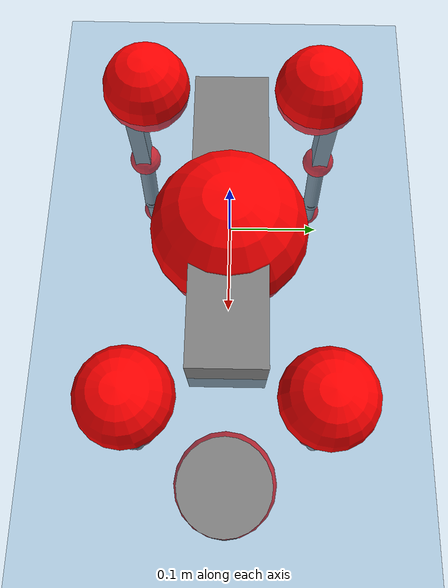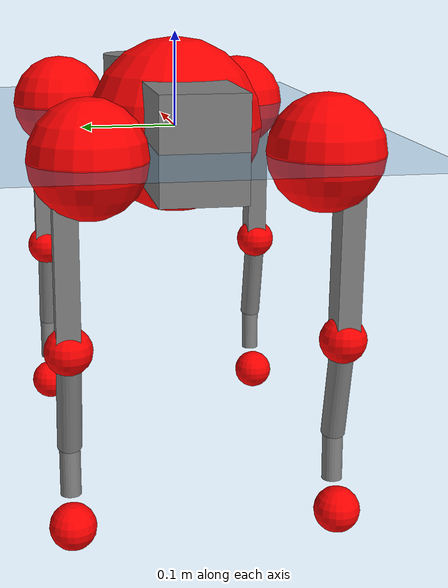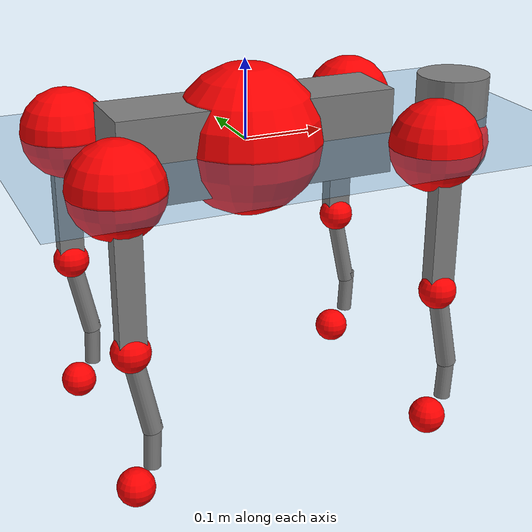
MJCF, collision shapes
<mujoco model="go2">
  <compiler angle="radian" assetdir="assets" balanceinertia="true" inertiafromgeom="false"/>

  <option timestep="0.005" density="1.2" viscosity="2e-05"/>

  <size nkey="1"/>

  <visual>
    <quality shadowsize="8192"/>
    <map shadowclip="0.5"/>
  </visual>

  <default>
    <default class="/">
      <geom contype="0" conaffinity="0" group="1" solref="-1000 -80"/>
      <site size="0.01 0.005 0.005" group="5"/>
      <general forcelimited="true" biastype="affine" gainprm="20" biasprm="0 -20 -0.5"/>
      <default class="go2">
        <joint armature="0.01" damping="0.01" frictionloss="0.2"/>
        <geom condim="1" margin="0.001"/>
        <default class="visual">
          <geom type="mesh" group="2"/>
        </default>
        <default class="collision">
          <geom group="3"/>
          <default class="foot">
            <geom size="0.022 0 0" condim="6" priority="1" friction="0.8 0.02 0.01" solimp="0.015 1 0.022"/>
          </default>
        </default>
        <default class="reward_collision_sphere">
          <geom group="5" rgba="1 0 0 1"/>
        </default>
      </default>
    </default>
  </default>

  <asset>
    <texture type="skybox" colorspace="auto" name="//unnamed_texture_0" builtin="gradient" rgb1="0.95 0.95 0.95" rgb2="0.95 0.95 0.95" width="100" height="600"/>
    <texture type="2d" colorspace="auto" name="texplane" builtin="checker" rgb1="0.345 0.575 0.748" rgb2="0.345 0.575 0.748" markrgb="1 1 1" width="512" height="512"/>
    <material name="MatPlane" class="/" texture="texplane" texuniform="true" texrepeat="2 2" specular="0.9"/>
    <material name="metal" class="/" rgba="0.9 0.95 0.95 1"/>
    <material name="black" class="/" rgba="0 0 0 1"/>
    <material name="white" class="/"/>
    <material name="gray" class="/" rgba="0.671705 0.692426 0.77427 1"/>
    <mesh name="base_0" class="/" file="base_0.obj"/>
    <mesh name="base_1" class="/" file="base_1.obj"/>
    <mesh name="base_2" class="/" file="base_2.obj"/>
    <mesh name="base_3" class="/" file="base_3.obj"/>
    <mesh name="base_4" class="/" file="base_4.obj"/>
    <mesh name="hip_0" class="/" file="hip_0.obj"/>
    <mesh name="hip_1" class="/" file="hip_1.obj"/>
    <mesh name="thigh_0" class="/" file="thigh_0.obj"/>
    <mesh name="thigh_1" class="/" file="thigh_1.obj"/>
    <mesh name="thigh_mirror_0" class="/" file="thigh_mirror_0.obj"/>
    <mesh name="thigh_mirror_1" class="/" file="thigh_mirror_1.obj"/>
    <mesh name="calf_0" class="/" file="calf_0.obj"/>
    <mesh name="calf_1" class="/" file="calf_1.obj"/>
    <mesh name="calf_mirror_0" class="/" file="calf_mirror_0.obj"/>
    <mesh name="calf_mirror_1" class="/" file="calf_mirror_1.obj"/>
    <mesh name="foot" class="/" file="foot.obj"/>
  </asset>

  <worldbody>
    <geom name="floor" class="/" size="100 100 0.125" type="plane" group="0" material="MatPlane"/>
    <light name="toplight_shadow" class="/" pos="0 0 5" dir="0.0990148 0.0990148 -0.990148" type="directional" ambient="0.04 0.04 0.04" diffuse="0.55 0.55 0.55" specular="0.12 0.12 0.12"/>
    <light name="toplight_fill" class="/" pos="0 0 5" dir="0.0990148 0.0990148 -0.990148" type="directional" castshadow="false" ambient="0.04 0.04 0.04" diffuse="0.3 0.3 0.3" specular="0.08 0.08 0.08"/>
    <body name="trunk" childclass="go2" pos="0.00195206 -0.000208767 0.000923907" quat="1 0.000189673 0.000703549 0.000188567">
      <inertial pos="0.0195234 -0.0011232 -0.00519119" quat="-0.000910301 0.712775 -0.0023082 0.701389" mass="5.4845" diaginertia="0.114021 0.0747928 0.0104502"/>
      <joint name="//unnamed_joint_0" type="free" armature="0" damping="0" frictionloss="0"/>
      <geom name="//unnamed_geom_1" class="visual" material="black" mesh="base_0"/>
      <geom name="//unnamed_geom_2" class="visual" material="black" mesh="base_1"/>
      <geom name="//unnamed_geom_3" class="visual" material="black" mesh="base_2"/>
      <geom name="//unnamed_geom_4" class="visual" material="white" mesh="base_3"/>
      <geom name="//unnamed_geom_5" class="visual" material="gray" mesh="base_4"/>
      <geom name="trunk_1" class="collision" size="0.176328 0.0438241 0.0534326" type="box"/>
      <geom name="trunk_2" class="collision" size="0.0468707 0.0421836" pos="0.289338 0 0.00847663" type="cylinder"/>
      <geom name="trunk_3" class="collision" size="0.0440585" pos="0.29746 0 -0.0508598"/>
      <geom name="//unnamed_geom_9" class="reward_collision_sphere" size="0.0937414"/>
      <geom name="//unnamed_geom_10" class="reward_collision_sphere" size="0.0562449" pos="0.284262 0 -0.0381448"/>
      <site name="imu" pos="-0.0276898 -0.00352586 0.0425742" size="0.00937414"/>
      <camera name="track" pos="0 -1.89872 0" quat="0.707107 0.707107 0 0" mode="trackcom"/>
      <camera name="ego_camera" pos="0.316749 0 0.0381448" quat="-0.5 -0.5 0.5 0.5"/>
      <body name="FL_hip" pos="0.195791 0.0442511 0.00115634" quat="1 -0.000148829 0.000118317 -0.000516641">
        <inertial pos="-0.0057369 0.0019448 -0.000750508" quat="0.497619 0.499036 0.50687 0.496408" mass="0.56443" diaginertia="0.000976014 0.000454589 0.000209637"/>
        <joint name="FL_hip_joint" pos="0 0 0" axis="0.999903 0.0119055 0.00722127" stiffness="0.00236009" range="-1.01235 1.03866" armature="0.00923986" damping="0.00180931" frictionloss="0.187409"/>
        <geom name="//unnamed_geom_11" class="visual" material="metal" mesh="hip_0"/>
        <geom name="//unnamed_geom_12" class="visual" material="gray" mesh="hip_1"/>
        <geom name="//unnamed_geom_13" class="collision" size="0.0431211 0.0187483" pos="0 0.0759488 0" quat="0.707107 0.707107 0 0" type="cylinder"/>
        <geom name="//unnamed_geom_14" class="reward_collision_sphere" size="0.0562449" pos="0 0.0664552 0"/>
        <body name="FL_thigh" pos="-0.00157381 0.0898365 0.00171979" quat="1 9.07947e-05 0.000172679 0.000329637">
          <inertial pos="-0.00391443 -0.0207736 -0.0289842" quat="0.829646 0.0848383 -0.0197564 0.551452" mass="0.945327" diaginertia="0.00632828 0.00450606 0.000393345"/>
          <joint name="FL_thigh_joint" pos="0 0 0" axis="0.00709589 0.999956 0.00605418" range="-1.5859 3.49194" armature="0.00974391" damping="0.0025656" frictionloss="0.195998"/>
          <geom name="//unnamed_geom_15" class="visual" material="metal" mesh="thigh_0"/>
          <geom name="//unnamed_geom_16" class="visual" material="gray" mesh="thigh_1"/>
          <geom name="//unnamed_geom_17" class="collision" size="0.0998346 0.0114833 0.015936" pos="0 0 -0.0902761" quat="0.707107 0 0.707107 0" type="box"/>
          <body name="FL_calf" pos="-0.000255998 -0.00224471 -0.180563" quat="1 0.000133206 1.33503e-05 -0.000176004">
            <inertial pos="0.00570028 -0.000677312 -0.119365" quat="0.709253 0.0019975 -0.00895007 0.704895" mass="0.198821" diaginertia="0.0016586 0.00115346 2.36441e-05"/>
            <joint name="FL_calf_joint" pos="0 0 0" axis="-0.00279138 0.999995 -0.00139165" stiffness="0.000771939" range="-2.7545 -0.832946" armature="0.00902376" damping="0" frictionloss="0.180337"/>
            <geom name="//unnamed_geom_18" class="visual" material="gray" mesh="calf_0"/>
            <geom name="//unnamed_geom_19" class="visual" material="black" mesh="calf_1"/>
            <geom name="FL_calf0" class="collision" size="0.011249 0.0562449" pos="0.00812176 0 -0.0508598" quat="0.994493 0 -0.104807 0" type="cylinder"/>
            <geom name="//unnamed_geom_21" class="collision" size="0.0103116 0.030466" pos="0.0203044 0 -0.125454" quat="0.999688 0 0.0249974 0" type="cylinder"/>
            <geom name="//unnamed_geom_22" class="visual" pos="0 0 -0.180552" quat="1 0 0 0" material="black" mesh="foot"/>
            <geom name="FL_foot" class="foot" size="0.0177042" pos="-0.00203044 0 -0.180552"/>
            <geom name="//unnamed_geom_24" class="reward_collision_sphere" size="0.0234354"/>
            <geom name="//unnamed_geom_25" class="reward_collision_sphere" size="0.0234354" pos="-0.00203044 0 -0.180552"/>
            <site name="FL_foot" class="foot" pos="-0.00203044 0 -0.180552" size="0.00937414"/>
          </body>
        </body>
      </body>
      <body name="FR_hip" pos="0.197399 -0.0443111 -0.00149671" quat="1 -3.37821e-05 0.000174068 0.000114902">
        <inertial pos="-0.00596615 -0.00293239 -0.000431318" quat="0.49727 0.505318 0.496879 0.500487" mass="0.556156" diaginertia="0.000956877 0.000463316 0.000212383"/>
        <joint name="FR_hip_joint" pos="0 0 0" axis="1 0.00038763 0.000214224" stiffness="0.00596351" range="-1.06763 1.04921" armature="0.00908875" damping="0.0177478" frictionloss="0.178655"/>
        <geom name="//unnamed_geom_26" class="visual" pos="0 8.85942e-10 3.79999e-08" quat="4.63268e-05 1 0 0" material="metal" mesh="hip_0"/>
        <geom name="//unnamed_geom_27" class="visual" pos="0 1.43622e-09 -9.39883e-08" quat="4.63268e-05 1 0 0" material="gray" mesh="hip_1"/>
        <geom name="//unnamed_geom_28" class="collision" size="0.0431211 0.0187483" pos="0 -0.0759488 0" quat="0.707107 0.707107 0 0" type="cylinder"/>
        <geom name="//unnamed_geom_29" class="reward_collision_sphere" size="0.0562449" pos="0 -0.0664552 0"/>
        <body name="FR_thigh" pos="0.000322637 -0.0927698 -0.000556953" quat="1 1.16795e-05 -3.73257e-05 2.42936e-05">
          <inertial pos="-0.00427519 0.0208597 -0.027979" quat="0.551237 -0.0207113 0.0840558 0.829845" mass="0.955281" diaginertia="0.00645464 0.00460143 0.000393054"/>
          <joint name="FR_thigh_joint" pos="0 0 0" axis="-0.00236206 -0.999995 0.00222253" range="-3.50153 1.58282" armature="0.00934047" damping="0.0147667" frictionloss="0.178539"/>
          <geom name="//unnamed_geom_30" class="visual" material="metal" mesh="thigh_mirror_0"/>
          <geom name="//unnamed_geom_31" class="visual" material="gray" mesh="thigh_mirror_1"/>
          <geom name="//unnamed_geom_32" class="collision" size="0.0998346 0.0114833 0.015936" pos="0 0 -0.0902761" quat="0.707107 0 0.707107 0" type="box"/>
          <body name="FR_calf" pos="-0.000660912 -0.00140101 -0.179314" quat="1 -1.27116e-06 -2.60097e-06 7.97505e-06">
            <inertial pos="0.00617452 0.000925099 -0.120429" quat="0.704151 -0.00801973 -0.0036426 0.709995" mass="0.199435" diaginertia="0.00160991 0.00113065 2.32302e-05"/>
            <joint name="FR_calf_joint" pos="0 0 0" axis="-0.0081261 -0.999966 0.00135202" range="0.839834 2.72553" armature="0.00976863" damping="0.0133939" frictionloss="0.196863"/>
            <geom name="//unnamed_geom_33" class="visual" material="gray" mesh="calf_mirror_0"/>
            <geom name="//unnamed_geom_34" class="visual" material="black" mesh="calf_mirror_1"/>
            <geom name="FR_calf0" class="collision" size="0.0121864 0.0562449" pos="0.0101522 0 -0.0508598" quat="0.995004 0 -0.0998334 0" type="cylinder"/>
            <geom name="//unnamed_geom_36" class="collision" size="0.0103116 0.030466" pos="0.0203044 0 -0.125454" quat="0.999688 0 0.0249974 0" type="cylinder"/>
            <geom name="//unnamed_geom_37" class="visual" pos="0 0 -0.180552" quat="1 0 0 0" material="black" mesh="foot"/>
            <geom name="FR_foot" class="foot" size="0.0231719" pos="-0.00203044 0 -0.180552"/>
            <geom name="//unnamed_geom_39" class="reward_collision_sphere" size="0.0234354"/>
            <geom name="//unnamed_geom_40" class="reward_collision_sphere" size="0.0234354" pos="-0.00203044 0 -0.180552"/>
            <site name="FR_foot" class="foot" pos="-0.00203044 0 -0.180552" size="0.00937414"/>
          </body>
        </body>
      </body>
      <body name="RL_hip" pos="-0.196404 0.0445147 -0.000436651" quat="1 -0.000251826 -1.60191e-05 -3.51492e-05">
        <inertial pos="0.00458855 0.00392186 -6.57282e-05" quat="0.497287 0.49941 0.502881 0.500405" mass="0.569547" diaginertia="0.000958018 0.000461421 0.000213633"/>
        <joint name="RL_hip_joint" pos="0 0 0" axis="-0.999812 -0.00452859 0.0188505" stiffness="0.00145672" range="-1.05838 1.05568" armature="0.0090288" damping="0.0173702" frictionloss="0.19909"/>
        <geom name="//unnamed_geom_41" class="visual" pos="-1.45969e-09 0 -2.86133e-07" quat="4.63268e-05 0 1 0" material="metal" mesh="hip_0"/>
        <geom name="//unnamed_geom_42" class="visual" pos="-2.36633e-09 0 -2.53759e-07" quat="4.63268e-05 0 1 0" material="gray" mesh="hip_1"/>
        <geom name="//unnamed_geom_43" class="collision" size="0.0431211 0.0187483" pos="0 0.0759488 0" quat="0.707107 0.707107 0 0" type="cylinder"/>
        <geom name="//unnamed_geom_44" class="reward_collision_sphere" size="0.0562449" pos="0 0.0664552 0"/>
        <body name="RL_thigh" pos="0.000180995 0.0890809 0.000924578" quat="1 -0.000157502 -3.19408e-05 0.000224889">
          <inertial pos="-0.00359239 -0.0210086 -0.027595" quat="0.82973 0.0864648 -0.0158408 0.551199" mass="0.963127" diaginertia="0.0063636 0.00449654 0.000381235"/>
          <joint name="RL_thigh_joint" pos="0 0 0" axis="0.000921468 1 -3.66474e-05" stiffness="0.00402907" range="-0.521089 4.53529" armature="0.00952629" damping="0.012201" frictionloss="0.186984"/>
          <geom name="//unnamed_geom_45" class="visual" material="metal" mesh="thigh_0"/>
          <geom name="//unnamed_geom_46" class="visual" material="gray" mesh="thigh_1"/>
          <geom name="//unnamed_geom_47" class="collision" size="0.0998346 0.0114833 0.015936" pos="0 0 -0.0902761" quat="0.707107 0 0.707107 0" type="box"/>
          <body name="RL_calf" pos="-2.37842e-05 -0.000493389 -0.182284" quat="1 2.52974e-05 -3.88515e-05 8.57418e-06">
            <inertial pos="0.00726218 0.00141454 -0.11976" quat="0.709998 -0.00104221 -0.00181592 0.7042" mass="0.196864" diaginertia="0.001604 0.00111706 2.24703e-05"/>
            <joint name="RL_calf_joint" pos="0 0 0" axis="0.00108439 0.999998 -0.00151584" range="-2.72103 -0.854937" armature="0.0090902" damping="0.00654952" frictionloss="0.204092"/>
            <geom name="//unnamed_geom_48" class="visual" material="gray" mesh="calf_0"/>
            <geom name="//unnamed_geom_49" class="visual" material="black" mesh="calf_1"/>
            <geom name="RL_calf0" class="collision" size="0.0121864 0.0562449" pos="0.0101522 0 -0.0508598" quat="0.995004 0 -0.0998334 0" type="cylinder"/>
            <geom name="//unnamed_geom_51" class="collision" size="0.0103116 0.030466" pos="0.0203044 0 -0.125454" quat="0.999688 0 0.0249974 0" type="cylinder"/>
            <geom name="//unnamed_geom_52" class="visual" pos="0 0 -0.180552" quat="1 0 0 0" material="black" mesh="foot"/>
            <geom name="RL_foot" class="foot" size="0.017546" pos="-0.00203044 0 -0.180552"/>
            <geom name="//unnamed_geom_54" class="reward_collision_sphere" size="0.0234354"/>
            <geom name="//unnamed_geom_55" class="reward_collision_sphere" size="0.0234354" pos="-0.00203044 0 -0.180552"/>
            <site name="RL_foot" class="foot" pos="-0.00203044 0 -0.180552" size="0.00937414"/>
          </body>
        </body>
      </body>
      <body name="RR_hip" pos="-0.19733 -0.0436615 3.61317e-05" quat="1 0.000432588 0.000340188 -0.000697305">
        <inertial pos="0.00707496 -0.00155942 -0.00169099" quat="0.499112 0.497086 0.498229 0.505529" mass="0.55934" diaginertia="0.000956549 0.000461273 0.000209026"/>
        <joint name="RR_hip_joint" pos="0 0 0" axis="-0.999946 -0.0017075 0.0102334" range="-1.06627 1.05396" armature="0.00980797" damping="0.0114524" frictionloss="0.189602"/>
        <geom name="//unnamed_geom_56" class="visual" pos="1.45741e-09 8.85942e-10 -3.24133e-07" quat="2.14617e-09 4.63268e-05 4.63268e-05 -1" material="metal" mesh="hip_0"/>
        <geom name="//unnamed_geom_57" class="visual" pos="2.37197e-09 1.43622e-09 -1.59771e-07" quat="2.14617e-09 4.63268e-05 4.63268e-05 -1" material="gray" mesh="hip_1"/>
        <geom name="//unnamed_geom_58" class="collision" size="0.0431211 0.0187483" pos="0 -0.0759488 0" quat="0.707107 0.707107 0 0" type="cylinder"/>
        <geom name="//unnamed_geom_59" class="reward_collision_sphere" size="0.0562449" pos="0 -0.0664552 0"/>
        <body name="RR_thigh" pos="4.27884e-05 -0.0910477 -0.00281424" quat="1 -3.6741e-05 -3.50218e-05 4.77222e-05">
          <inertial pos="-0.00409156 0.0213651 -0.0278251" quat="0.551806 -0.020084 0.0849553 0.829391" mass="0.936754" diaginertia="0.00638496 0.00449109 0.000385107"/>
          <joint name="RR_thigh_joint" pos="0 0 0" axis="0.00387032 -0.999946 -0.00967318" range="-4.54154 0.546126" armature="0.00914755" damping="0.0127238" frictionloss="0.189206"/>
          <geom name="//unnamed_geom_60" class="visual" material="metal" mesh="thigh_mirror_0"/>
          <geom name="//unnamed_geom_61" class="visual" material="gray" mesh="thigh_mirror_1"/>
          <geom name="//unnamed_geom_62" class="collision" size="0.0998346 0.0114833 0.015936" pos="0 0 -0.0902761" quat="0.707107 0 0.707107 0" type="box"/>
          <body name="RR_calf" pos="-0.000309523 0.00087733 -0.181889" quat="1 -5.65473e-06 -2.04051e-05 7.32912e-07">
            <inertial pos="0.00598886 0.00110403 -0.119959" quat="0.702204 -0.00734323 0.00273664 0.711933" mass="0.198372" diaginertia="0.00158863 0.00112468 2.34904e-05"/>
            <joint name="RR_calf_joint" pos="0 0 0" axis="-0.0107587 -0.999926 -0.00573456" range="0.847943 2.72319" armature="0.00961132" damping="0.0159343" frictionloss="0.192434"/>
            <geom name="//unnamed_geom_63" class="visual" material="gray" mesh="calf_mirror_0"/>
            <geom name="//unnamed_geom_64" class="visual" material="black" mesh="calf_mirror_1"/>
            <geom name="RR_calf0" class="collision" size="0.0121864 0.0562449" pos="0.0101522 0 -0.0508598" quat="0.995004 0 -0.0998334 0" type="cylinder"/>
            <geom name="//unnamed_geom_66" class="collision" size="0.0103116 0.030466" pos="0.0203044 0 -0.125454" quat="0.999688 0 0.0249974 0" type="cylinder"/>
            <geom name="//unnamed_geom_67" class="visual" pos="0 0 -0.180552" quat="1 0 0 0" material="black" mesh="foot"/>
            <geom name="RR_foot" class="foot" size="0.0219717" pos="-0.00203044 0 -0.180552"/>
            <geom name="//unnamed_geom_69" class="reward_collision_sphere" size="0.0234354"/>
            <geom name="//unnamed_geom_70" class="reward_collision_sphere" size="0.0234354" pos="-0.00203044 0 -0.180552"/>
            <site name="RR_foot" class="foot" pos="-0.00203044 0 -0.180552" size="0.00937414"/>
          </body>
        </body>
      </body>
    </body>
  </worldbody>

  <contact>
    <pair class="/" geom1="floor" geom2="FL_foot" name="//unnamed_contact_0"/>
    <pair class="/" geom1="floor" geom2="FR_foot" name="//unnamed_contact_1"/>
    <pair class="/" geom1="floor" geom2="RL_foot" name="//unnamed_contact_2"/>
    <pair class="/" geom1="floor" geom2="RR_foot" name="//unnamed_contact_3"/>
  </contact>

  <actuator>
    <general name="FL_hip" class="/" joint="FL_hip_joint" forcerange="-22.2407 22.2407" gainprm="18.5879" biasprm="0 -18.5879 -0.465574"/>
    <general name="FL_thigh" class="/" joint="FL_thigh_joint" forcerange="-22.8686 22.8686" gainprm="18.5879" biasprm="0 -18.5879 -0.465574"/>
    <general name="FL_calf" class="/" joint="FL_calf_joint" forcerange="-41.6255 41.6255" gainprm="18.5879" biasprm="0 -18.5879 -0.465574"/>
    <general name="FR_hip" class="/" joint="FR_hip_joint" forcerange="-22.3786 22.3786" gainprm="18.5879" biasprm="0 -18.5879 -0.465574"/>
    <general name="FR_thigh" class="/" joint="FR_thigh_joint" forcerange="-21.5787 21.5787" gainprm="18.5879" biasprm="0 -18.5879 -0.465574"/>
    <general name="FR_calf" class="/" joint="FR_calf_joint" forcerange="-42.9303 42.9303" gainprm="18.5879" biasprm="0 -18.5879 -0.465574"/>
    <general name="RL_hip" class="/" joint="RL_hip_joint" forcerange="-23.6625 23.6625" gainprm="18.5879" biasprm="0 -18.5879 -0.465574"/>
    <general name="RL_thigh" class="/" joint="RL_thigh_joint" forcerange="-23.0154 23.0154" gainprm="18.5879" biasprm="0 -18.5879 -0.465574"/>
    <general name="RL_calf" class="/" joint="RL_calf_joint" forcerange="-40.0829 40.0829" gainprm="18.5879" biasprm="0 -18.5879 -0.465574"/>
    <general name="RR_hip" class="/" joint="RR_hip_joint" forcerange="-22.249 22.249" gainprm="18.5879" biasprm="0 -18.5879 -0.465574"/>
    <general name="RR_thigh" class="/" joint="RR_thigh_joint" forcerange="-23.473 23.473" gainprm="18.5879" biasprm="0 -18.5879 -0.465574"/>
    <general name="RR_calf" class="/" joint="RR_calf_joint" forcerange="-42.7592 42.7592" gainprm="18.5879" biasprm="0 -18.5879 -0.465574"/>
  </actuator>

  <sensor>
    <gyro site="imu" name="imu_angular_velocity"/>
    <velocimeter site="imu" name="imu_linear_velocity"/>
    <framelinvel objtype="site" objname="FL_foot" name="FL_foot_global_linear_velocity"/>
    <framelinvel objtype="site" objname="FR_foot" name="FR_foot_global_linear_velocity"/>
    <framelinvel objtype="site" objname="RL_foot" name="RL_foot_global_linear_velocity"/>
    <framelinvel objtype="site" objname="RR_foot" name="RR_foot_global_linear_velocity"/>
  </sensor>

  <keyframe>
    <key name="home" qpos="0 0 0.325 1 0 0 0 0.1 0.8 -1.5 -0.1 -0.8 1.5 -0.1 0.8 -1.5 0.1 -0.8 1.5"/>
  </keyframe>
</mujoco>
